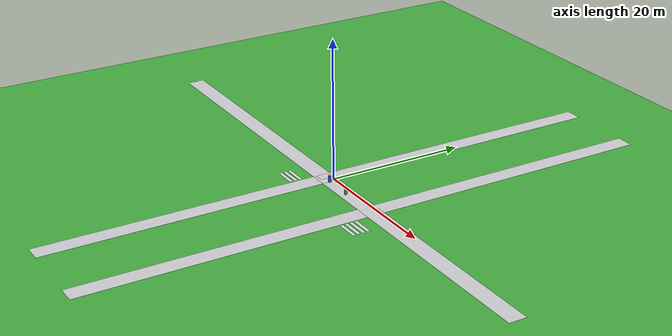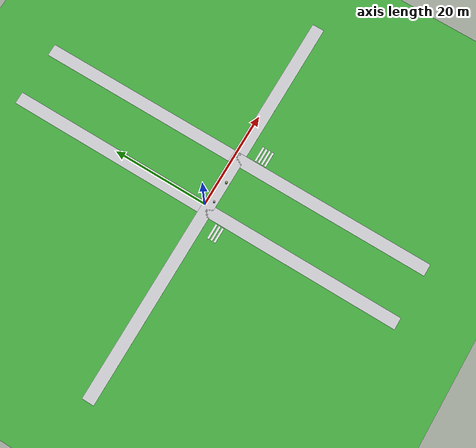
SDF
<sdf version="1.9">
 <world name="city_second">
  <model name="ground_plane">
   <static>true</static>
   <link name="link">
    <collision name="collision">
     <geometry><plane><normal>0 0 1</normal><size>300 300</size></plane></geometry>
    </collision>
    <visual name="visual">
     <geometry><plane><normal>0 0 1</normal><size>300 300</size></plane></geometry>
     <material>
      <ambient>0.28 0.69 0.26 1</ambient>
      <diffuse>0.28 0.69 0.26 1</diffuse>
      <specular>0.03 0.03 0.03 1</specular>
     </material>
    </visual>
   </link>
  </model>
  <model name="sidewalk_h_1_north">
   <static>true</static>
   <pose>0 -0.75 0.015 0 0 0.0</pose>
   <link name="link">
    <collision name="collision"><geometry><box><size>84 2.5 0.02</size></box></geometry></collision>
    <visual name="visual">
     <geometry><box><size>84 2.5 0.02</size></box></geometry>
     <material>
      <ambient>0.83 0.83 0.85 1</ambient>
      <diffuse>0.83 0.83 0.85 1</diffuse>
      <specular>0.03 0.03 0.03 1</specular>
     </material>
    </visual>
   </link>
  </model>
  <model name="sidewalk_v_1_east">
   <static>true</static>
   <pose>-0.75 0 0.015 0 0 0.0</pose>
   <link name="link">
    <collision name="collision"><geometry><box><size>2.5 84 0.02</size></box></geometry></collision>
    <visual name="visual">
     <geometry><box><size>2.5 84 0.02</size></box></geometry>
     <material>
      <ambient>0.83 0.83 0.85 1</ambient>
      <diffuse>0.83 0.83 0.85 1</diffuse>
      <specular>0.03 0.03 0.03 1</specular>
     </material>
    </visual>
   </link>
  </model>
  <model name="sidewalk_v_2_west">
   <static>true</static>
   <pose>10.75 0 0.015 0 0 0.0</pose>
   <link name="link">
    <collision name="collision"><geometry><box><size>2.5 84 0.02</size></box></geometry></collision>
    <visual name="visual">
     <geometry><box><size>2.5 84 0.02</size></box></geometry>
     <material>
      <ambient>0.83 0.83 0.85 1</ambient>
      <diffuse>0.83 0.83 0.85 1</diffuse>
      <specular>0.03 0.03 0.03 1</specular>
     </material>
    </visual>
   </link>
  </model>
  <model name="corner_sidewalk_1_1_4">
   <static>true</static>
   <pose>-0.75 -0.75 0.015 0 0 0.0</pose>
   <link name="link">
    <collision name="collision"><geometry><box><size>2.5 2.5 0.02</size></box></geometry></collision>
    <visual name="visual">
     <geometry><box><size>2.5 2.5 0.02</size></box></geometry>
     <material>
      <ambient>0.83 0.83 0.85 1</ambient>
      <diffuse>0.83 0.83 0.85 1</diffuse>
      <specular>0.03 0.03 0.03 1</specular>
     </material>
    </visual>
   </link>
  </model>
  <model name="corner_sidewalk_2_1_2">
   <static>true</static>
   <pose>10.75 -0.75 0.015 0 0 0.0</pose>
   <link name="link">
    <collision name="collision"><geometry><box><size>2.5 2.5 0.02</size></box></geometry></collision>
    <visual name="visual">
     <geometry><box><size>2.5 2.5 0.02</size></box></geometry>
     <material>
      <ambient>0.83 0.83 0.85 1</ambient>
      <diffuse>0.83 0.83 0.85 1</diffuse>
      <specular>0.03 0.03 0.03 1</specular>
     </material>
    </visual>
   </link>
  </model>
  <model name="crosswalk_v_1_1_east_5">
   <static>true</static>
   <pose>-3.75 -5.3 0.017 0 0 0.0</pose>
   <link name="link">
    <collision name="collision"><geometry><box><size>3.2 0.42 0.01</size></box></geometry></collision>
    <visual name="visual">
     <geometry><box><size>3.2 0.42 0.01</size></box></geometry>
     <material>
      <ambient>0.92 0.92 0.93 1</ambient>
      <diffuse>0.92 0.92 0.93 1</diffuse>
      <specular>0.03 0.03 0.03 1</specular>
     </material>
    </visual>
   </link>
  </model>
  <model name="crosswalk_v_1_1_east_6">
   <static>true</static>
   <pose>-3.75 -4.6 0.017 0 0 0.0</pose>
   <link name="link">
    <collision name="collision"><geometry><box><size>3.2 0.42 0.01</size></box></geometry></collision>
    <visual name="visual">
     <geometry><box><size>3.2 0.42 0.01</size></box></geometry>
     <material>
      <ambient>0.92 0.92 0.93 1</ambient>
      <diffuse>0.92 0.92 0.93 1</diffuse>
      <specular>0.03 0.03 0.03 1</specular>
     </material>
    </visual>
   </link>
  </model>
  <model name="crosswalk_v_1_1_east_7">
   <static>true</static>
   <pose>-3.75 -3.9000000000000004 0.017 0 0 0.0</pose>
   <link name="link">
    <collision name="collision"><geometry><box><size>3.2 0.42 0.01</size></box></geometry></collision>
    <visual name="visual">
     <geometry><box><size>3.2 0.42 0.01</size></box></geometry>
     <material>
      <ambient>0.92 0.92 0.93 1</ambient>
      <diffuse>0.92 0.92 0.93 1</diffuse>
      <specular>0.03 0.03 0.03 1</specular>
     </material>
    </visual>
   </link>
  </model>
  <model name="crosswalk_v_2_1_west_4">
   <static>true</static>
   <pose>13.75 -6.0 0.017 0 0 0.0</pose>
   <link name="link">
    <collision name="collision"><geometry><box><size>3.2 0.42 0.01</size></box></geometry></collision>
    <visual name="visual">
     <geometry><box><size>3.2 0.42 0.01</size></box></geometry>
     <material>
      <ambient>0.92 0.92 0.93 1</ambient>
      <diffuse>0.92 0.92 0.93 1</diffuse>
      <specular>0.03 0.03 0.03 1</specular>
     </material>
    </visual>
   </link>
  </model>
  <model name="crosswalk_v_2_1_west_5">
   <static>true</static>
   <pose>13.75 -5.3 0.017 0 0 0.0</pose>
   <link name="link">
    <collision name="collision"><geometry><box><size>3.2 0.42 0.01</size></box></geometry></collision>
    <visual name="visual">
     <geometry><box><size>3.2 0.42 0.01</size></box></geometry>
     <material>
      <ambient>0.92 0.92 0.93 1</ambient>
      <diffuse>0.92 0.92 0.93 1</diffuse>
      <specular>0.03 0.03 0.03 1</specular>
     </material>
    </visual>
   </link>
  </model>
  <model name="crosswalk_v_2_1_west_6">
   <static>true</static>
   <pose>13.75 -4.6 0.017 0 0 0.0</pose>
   <link name="link">
    <collision name="collision"><geometry><box><size>3.2 0.42 0.01</size></box></geometry></collision>
    <visual name="visual">
     <geometry><box><size>3.2 0.42 0.01</size></box></geometry>
     <material>
      <ambient>0.92 0.92 0.93 1</ambient>
      <diffuse>0.92 0.92 0.93 1</diffuse>
      <specular>0.03 0.03 0.03 1</specular>
     </material>
    </visual>
   </link>
  </model>
  <model name="crosswalk_v_2_1_west_7">
   <static>true</static>
   <pose>13.75 -3.9000000000000004 0.017 0 0 0.0</pose>
   <link name="link">
    <collision name="collision"><geometry><box><size>3.2 0.42 0.01</size></box></geometry></collision>
    <visual name="visual">
     <geometry><box><size>3.2 0.42 0.01</size></box></geometry>
     <material>
      <ambient>0.92 0.92 0.93 1</ambient>
      <diffuse>0.92 0.92 0.93 1</diffuse>
      <specular>0.03 0.03 0.03 1</specular>
     </material>
    </visual>
   </link>
  </model>
  <model name="person_2">
   <static>true</static>
   <pose>1.2 -1.3 0 0 0 -2.945</pose>
   <link name="link">
    <collision name="legs">
     <pose>0 0 0.45 0 0 0</pose>
     <geometry><cylinder><radius>0.18</radius><length>0.9</length></cylinder></geometry>
    </collision>
    <visual name="torso">
     <pose>0 0 0.85 0 0 0</pose>
     <geometry><cylinder><radius>0.22</radius><length>0.9</length></cylinder></geometry>
     <material>
      <ambient>0.2 0.36 0.78 1</ambient>
      <diffuse>0.2 0.36 0.78 1</diffuse>
      <specular>0.03 0.03 0.03 1</specular>
     </material>
    </visual>
    <visual name="head">
     <pose>0 0 1.45 0 0 0</pose>
     <geometry><sphere><radius>0.18</radius></sphere></geometry>
     <material>
      <ambient>0.92 0.78 0.66 1</ambient>
      <diffuse>0.92 0.78 0.66 1</diffuse>
      <specular>0.03 0.03 0.03 1</specular>
     </material>
    </visual>
   </link>
  </model>
  <model name="person_3">
   <static>true</static>
   <pose>5.5 -1.4 0 0 0 -1.395</pose>
   <link name="link">
    <collision name="legs">
     <pose>0 0 0.45 0 0 0</pose>
     <geometry><cylinder><radius>0.18</radius><length>0.9</length></cylinder></geometry>
    </collision>
    <visual name="torso">
     <pose>0 0 0.85 0 0 0</pose>
     <geometry><cylinder><radius>0.22</radius><length>0.9</length></cylinder></geometry>
     <material>
      <ambient>0.21 0.6 0.28 1</ambient>
      <diffuse>0.21 0.6 0.28 1</diffuse>
      <specular>0.03 0.03 0.03 1</specular>
     </material>
    </visual>
    <visual name="head">
     <pose>0 0 1.45 0 0 0</pose>
     <geometry><sphere><radius>0.18</radius></sphere></geometry>
     <material>
      <ambient>0.92 0.78 0.66 1</ambient>
      <diffuse>0.92 0.78 0.66 1</diffuse>
      <specular>0.03 0.03 0.03 1</specular>
     </material>
    </visual>
   </link>
  </model>
  <model name="robot_spawn_sidewalk_hint">
   <static>true</static>
   <pose>0 0 0.021 0 0 0</pose>
   <link name="link">
    <visual name="visual">
     <geometry><box><size>0.8 0.8 0.005</size></box></geometry>
     <material>
      <ambient>0.55 0.86 0.57 0.65</ambient>
      <diffuse>0.55 0.86 0.57 0.65</diffuse>
      <specular>0.0 0.0 0.0 1</specular>
     </material>
     <transparency>0.35</transparency>
    </visual>
   </link>
  </model>
 </world>
</sdf>
